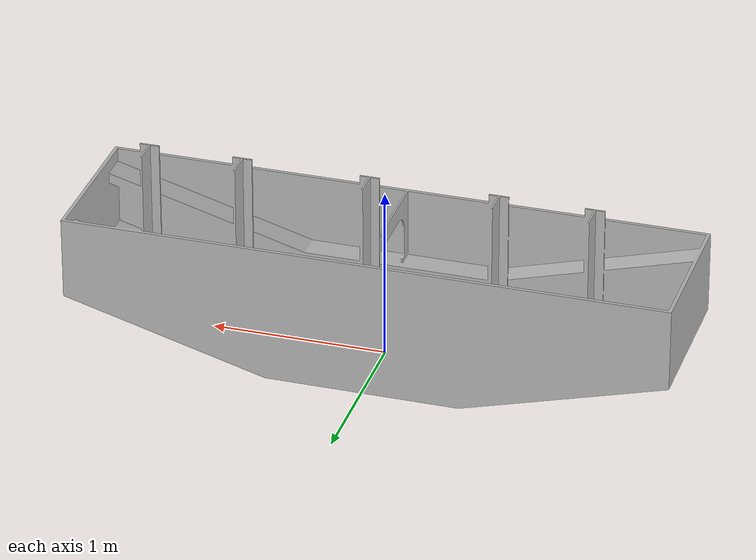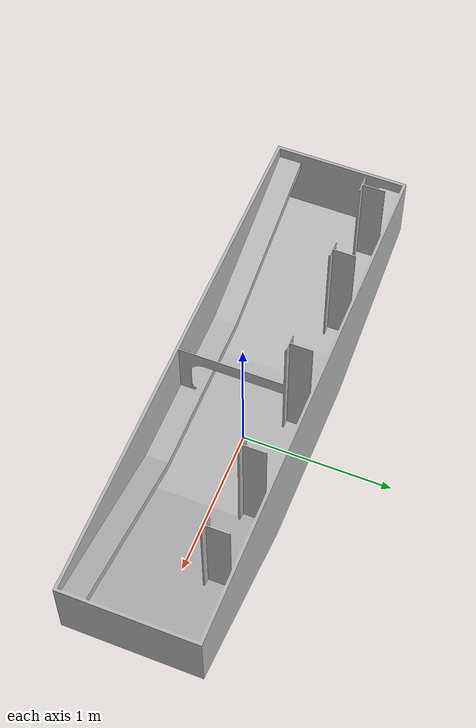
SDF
<?xml version="1.0" ?>
<sdf version="1.5">
  <world name="default">
    <!-- A global light source -->
    <include>
      <uri>model://sun</uri>
    </include>
    <include>
        <uri>model://tank_no_lid</uri>
    </include>
  </world>
</sdf>

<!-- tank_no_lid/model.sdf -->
<sdf version="1.5">
    <model name="tank_no_lid">
        <static>true</static>
        <link name="tank_link">

            <visual name="tank">
                <pose>0 0 0 0 0 0</pose>
                <geometry>
                    <mesh><uri>model://tank_no_lid/meshes/tank_no_lid.stl</uri><scale>1 1 1</scale></mesh>
                </geometry>
                <material>Gazebo/Grey</material>
            </visual>

            <collision name="tank">
                <pose>0 0 0 0 0 0</pose>
                <geometry>
                    <mesh><uri>model://tank_no_lid/meshes/tank_no_lid.stl</uri><scale>1 1 1</scale></mesh>
                </geometry>
            </collision>

        </link>
    </model>
</sdf>
